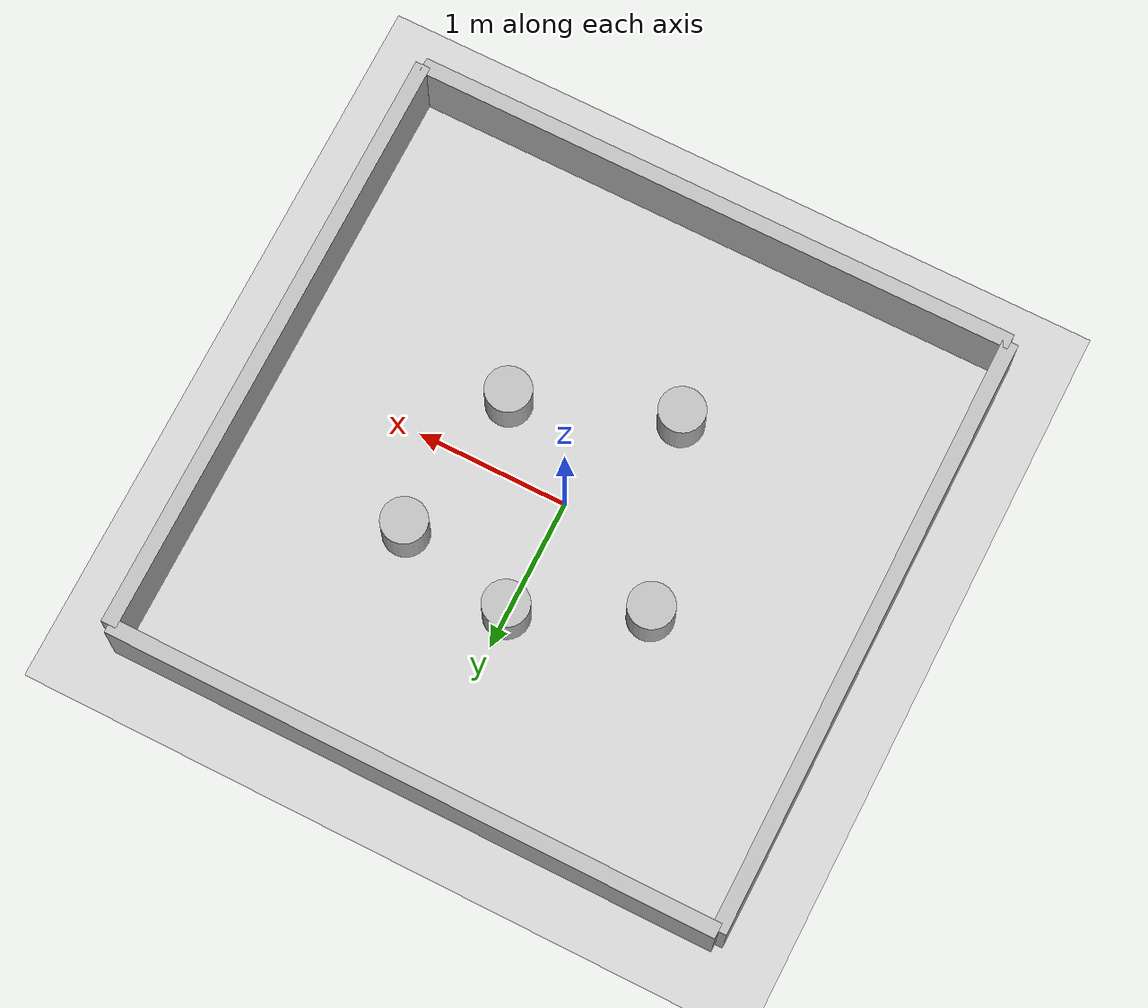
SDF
<?xml version="1.0" ?>
<sdf version="1.6">
  <world name="a1_course">

    <include><uri>model://ground_plane</uri></include>
    <include><uri>model://sun</uri></include>

    <scene>
      <shadows>false</shadows>
    </scene>

    <physics type="ode">
      <real_time_update_rate>1000.0</real_time_update_rate>
      <max_step_size>0.001</max_step_size>
      <real_time_factor>1</real_time_factor>
    </physics>

    <model name="walls">
      <static>true</static>
      <link name="link">
        <collision name="w_n">
          <pose>0 2.0 0.25 0 0 0</pose>
          <geometry><box><size>4.0 0.1 0.5</size></box></geometry>
        </collision>
        <visual name="v_n">
          <pose>0 2.0 0.25 0 0 0</pose>
          <geometry><box><size>4.0 0.1 0.5</size></box></geometry>
        </visual>
        <collision name="w_s">
          <pose>0 -2.0 0.25 0 0 0</pose>
          <geometry><box><size>4.0 0.1 0.5</size></box></geometry>
        </collision>
        <visual name="v_s">
          <pose>0 -2.0 0.25 0 0 0</pose>
          <geometry><box><size>4.0 0.1 0.5</size></box></geometry>
        </visual>
        <collision name="w_e">
          <pose>2.0 0 0.25 0 0 0</pose>
          <geometry><box><size>0.1 4.0 0.5</size></box></geometry>
        </collision>
        <visual name="v_e">
          <pose>2.0 0 0.25 0 0 0</pose>
          <geometry><box><size>0.1 4.0 0.5</size></box></geometry>
        </visual>
        <collision name="w_w">
          <pose>-2.0 0 0.25 0 0 0</pose>
          <geometry><box><size>0.1 4.0 0.5</size></box></geometry>
        </collision>
        <visual name="v_w">
          <pose>-2.0 0 0.25 0 0 0</pose>
          <geometry><box><size>0.1 4.0 0.5</size></box></geometry>
        </visual>
      </link>
    </model>

    <model name="obs1">
      <static>true</static>
      <pose>0.6 -0.42 0.15 0 0 0</pose>
      <link name="link">
        <collision name="c"><geometry><cylinder><radius>0.15</radius><length>0.3</length></cylinder></geometry></collision>
        <visual name="v"><geometry><cylinder><radius>0.15</radius><length>0.3</length></cylinder></geometry></visual>
      </link>
    </model>

    <model name="obs2">
      <static>true</static>
      <pose>0.0 0.78 0.15 0 0 0</pose>
      <link name="link">
        <collision name="c"><geometry><cylinder><radius>0.15</radius><length>0.3</length></cylinder></geometry></collision>
        <visual name="v"><geometry><cylinder><radius>0.15</radius><length>0.3</length></cylinder></geometry></visual>
      </link>
    </model>

    <model name="obs3">
      <static>true</static>
      <pose>-0.78 0.4 0.15 0 0 0</pose>
      <link name="link">
        <collision name="c"><geometry><cylinder><radius>0.15</radius><length>0.3</length></cylinder></geometry></collision>
        <visual name="v"><geometry><cylinder><radius>0.15</radius><length>0.3</length></cylinder></geometry></visual>
      </link>
    </model>

    <model name="obs4">
      <static>true</static>
      <pose>-0.4 -0.78 0.15 0 0 0</pose>
      <link name="link">
        <collision name="c"><geometry><cylinder><radius>0.15</radius><length>0.3</length></cylinder></geometry></collision>
        <visual name="v"><geometry><cylinder><radius>0.15</radius><length>0.3</length></cylinder></geometry></visual>
      </link>
    </model>

    <model name="obs5">
      <static>true</static>
      <pose>0.78 0.6 0.15 0 0 0</pose>
      <link name="link">
        <collision name="c"><geometry><cylinder><radius>0.15</radius><length>0.3</length></cylinder></geometry></collision>
        <visual name="v"><geometry><cylinder><radius>0.15</radius><length>0.3</length></cylinder></geometry></visual>
      </link>
    </model>

  </world>
</sdf>
